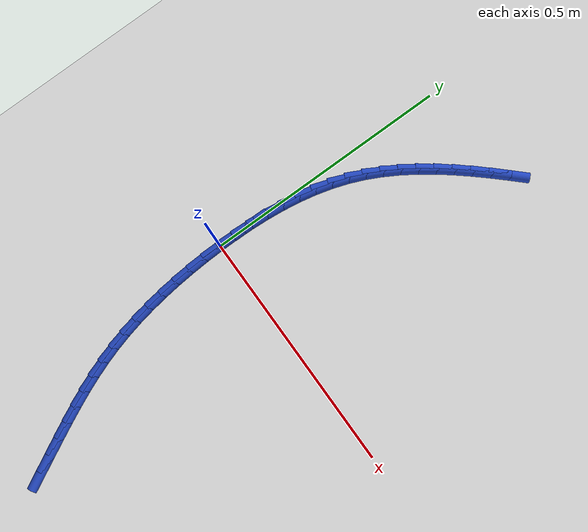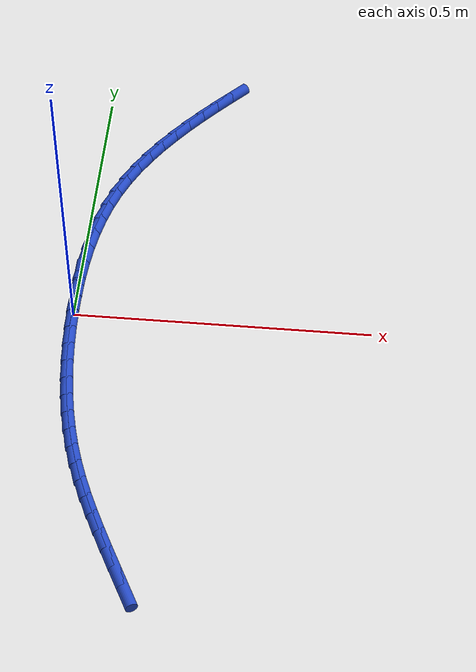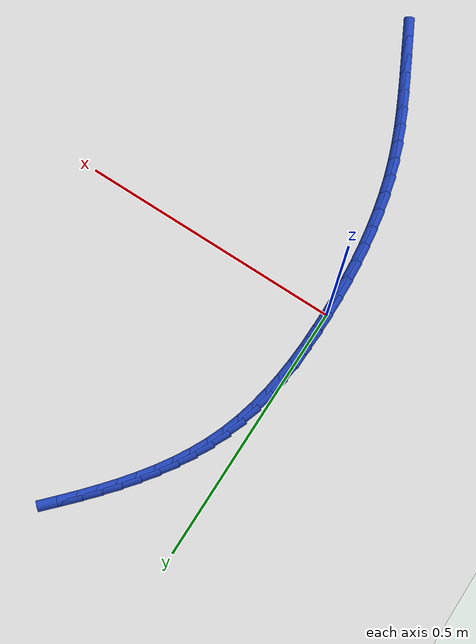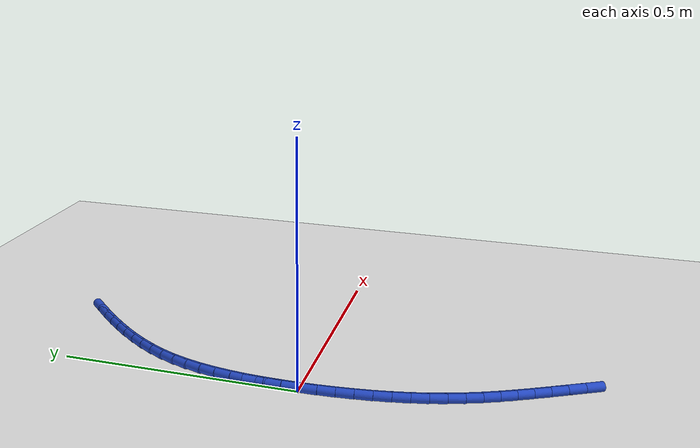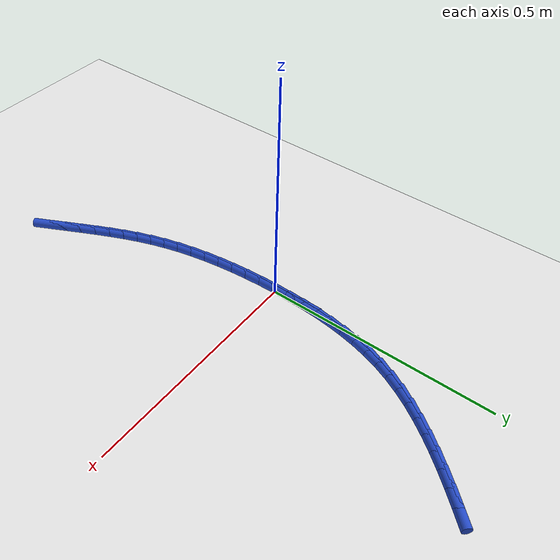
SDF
<sdf version="1.6">
 <world name="default">
  <model name="ground_plane">
   <static>1</static>
   <link name="link">
    <collision name="collision">
     <geometry><plane><normal>0 0 1</normal><size>100 100</size></plane></geometry>
     <surface><friction><ode><mu>100</mu><mu2>50</mu2></ode></friction></surface>
    </collision>
    <visual name="visual">
     <cast_shadows>0</cast_shadows>
     <geometry><plane><normal>0 0 1</normal><size>100 100</size></plane></geometry>
     <material>
      <script><uri>file://media/materials/scripts/gazebo.material</uri><name>Gazebo/WhiteGlow</name></script>
     </material>
    </visual>
   </link>
  </model>
  <model name="line">
   <link name="link_0">
    <pose>2.168404344971009e-18 -2.0816681711721685e-17 0.01 0 1.57 -1.5666137799620388</pose>
    <collision name="collision">
     <geometry><cylinder><radius>0.01</radius><length>0.08</length></cylinder></geometry>
    </collision>
    <visual name="visual">
     <material>
      <script><name>Gazebo/Blue</name><uri>file://media/materials/scripts/gazebo.material</uri></script>
     </material>
     <geometry><cylinder><radius>0.01</radius><length>0.08</length></cylinder></geometry>
    </visual>
   </link>
   <link name="link_1">
    <pose>-0.00014931991068801466 0.03570050639835543 0.01 0 1.57 1.5447862486688388</pose>
    <collision name="collision">
     <geometry><cylinder><radius>0.01</radius><length>0.08</length></cylinder></geometry>
    </collision>
    <visual name="visual">
     <material>
      <script><name>Gazebo/Blue</name><uri>file://media/materials/scripts/gazebo.material</uri></script>
     </material>
     <geometry><cylinder><radius>0.01</radius><length>0.08</length></cylinder></geometry>
    </visual>
   </link>
   <link name="link_2">
    <pose>0.0007764572397612806 0.07128549642963346 0.01 0 1.57 1.509629643829701</pose>
    <collision name="collision">
     <geometry><cylinder><radius>0.01</radius><length>0.08</length></cylinder></geometry>
    </collision>
    <visual name="visual">
     <material>
      <script><name>Gazebo/Blue</name><uri>file://media/materials/scripts/gazebo.material</uri></script>
     </material>
     <geometry><cylinder><radius>0.01</radius><length>0.08</length></cylinder></geometry>
    </visual>
   </link>
   <link name="link_3">
    <pose>0.002941073291581074 0.10663016014580813 0.01 0 1.57 1.4691681011994149</pose>
    <collision name="collision">
     <geometry><cylinder><radius>0.01</radius><length>0.08</length></cylinder></geometry>
    </collision>
    <visual name="visual">
     <material>
      <script><name>Gazebo/Blue</name><uri>file://media/materials/scripts/gazebo.material</uri></script>
     </material>
     <geometry><cylinder><radius>0.01</radius><length>0.08</length></cylinder></geometry>
    </visual>
   </link>
   <link name="link_4">
    <pose>0.006508270085004558 0.1416096875988536 0.01 0 1.57 1.4230384902590512</pose>
    <collision name="collision">
     <geometry><cylinder><radius>0.01</radius><length>0.08</length></cylinder></geometry>
    </collision>
    <visual name="visual">
     <material>
      <script><name>Gazebo/Blue</name><uri>file://media/materials/scripts/gazebo.material</uri></script>
     </material>
     <geometry><cylinder><radius>0.01</radius><length>0.08</length></cylinder></geometry>
    </visual>
   </link>
   <link name="link_5">
    <pose>0.011641789460264932 0.17609926884074395 0.01 0 1.57 1.3708865889503392</pose>
    <collision name="collision">
     <geometry><cylinder><radius>0.01</radius><length>0.08</length></cylinder></geometry>
    </collision>
    <visual name="visual">
     <material>
      <script><name>Gazebo/Blue</name><uri>file://media/materials/scripts/gazebo.material</uri></script>
     </material>
     <geometry><cylinder><radius>0.01</radius><length>0.08</length></cylinder></geometry>
    </visual>
   </link>
   <link name="link_6">
    <pose>0.01850537325759537 0.20997409392345323 0.01 0 1.57 1.312412080597748</pose>
    <collision name="collision">
     <geometry><cylinder><radius>0.01</radius><length>0.08</length></cylinder></geometry>
    </collision>
    <visual name="visual">
     <material>
      <script><name>Gazebo/Blue</name><uri>file://media/materials/scripts/gazebo.material</uri></script>
     </material>
     <geometry><cylinder><radius>0.01</radius><length>0.08</length></cylinder></geometry>
    </visual>
   </link>
   <link name="link_7">
    <pose>0.02726276331722908 0.24310935289895558 0.01 0 1.57 1.2474297237642613</pose>
    <collision name="collision">
     <geometry><cylinder><radius>0.01</radius><length>0.08</length></cylinder></geometry>
    </collision>
    <visual name="visual">
     <material>
      <script><name>Gazebo/Blue</name><uri>file://media/materials/scripts/gazebo.material</uri></script>
     </material>
     <geometry><cylinder><radius>0.01</radius><length>0.08</length></cylinder></geometry>
    </visual>
   </link>
   <link name="link_8">
    <pose>0.03807770147939925 0.2753802358192252 0.01 0 1.57 1.1770028223140747</pose>
    <collision name="collision">
     <geometry><cylinder><radius>0.01</radius><length>0.08</length></cylinder></geometry>
    </collision>
    <visual name="visual">
     <material>
      <script><name>Gazebo/Blue</name><uri>file://media/materials/scripts/gazebo.material</uri></script>
     </material>
     <geometry><cylinder><radius>0.01</radius><length>0.08</length></cylinder></geometry>
    </visual>
   </link>
   <link name="link_9">
    <pose>0.0510826033534428 0.30667991431961295 0.01 0 1.57 1.109309502528066</pose>
    <collision name="collision">
     <geometry><cylinder><radius>0.01</radius><length>0.08</length></cylinder></geometry>
    </collision>
    <visual name="visual">
     <material>
      <script><name>Gazebo/Blue</name><uri>file://media/materials/scripts/gazebo.material</uri></script>
     </material>
     <geometry><cylinder><radius>0.01</radius><length>0.08</length></cylinder></geometry>
    </visual>
   </link>
   <link name="link_10">
    <pose>0.06617806148963003 0.33703462889010094 0.01 0 1.57 1.0483875146573116</pose>
    <collision name="collision">
     <geometry><cylinder><radius>0.01</radius><length>0.08</length></cylinder></geometry>
    </collision>
    <visual name="visual">
     <material>
      <script><name>Gazebo/Blue</name><uri>file://media/materials/scripts/gazebo.material</uri></script>
     </material>
     <geometry><cylinder><radius>0.01</radius><length>0.08</length></cylinder></geometry>
    </visual>
   </link>
   <link name="link_11">
    <pose>0.08316064611714269 0.3665303299182934 0.01 0 1.57 0.9945217166711843</pose>
    <collision name="collision">
     <geometry><cylinder><radius>0.01</radius><length>0.08</length></cylinder></geometry>
    </collision>
    <visual name="visual">
     <material>
      <script><name>Gazebo/Blue</name><uri>file://media/materials/scripts/gazebo.material</uri></script>
     </material>
     <geometry><cylinder><radius>0.01</radius><length>0.08</length></cylinder></geometry>
    </visual>
   </link>
   <link name="link_12">
    <pose>0.10182643424813126 0.39525325090351665 0.01 0 1.57 0.9477398968117192</pose>
    <collision name="collision">
     <geometry><cylinder><radius>0.01</radius><length>0.08</length></cylinder></geometry>
    </collision>
    <visual name="visual">
     <material>
      <script><name>Gazebo/Blue</name><uri>file://media/materials/scripts/gazebo.material</uri></script>
     </material>
     <geometry><cylinder><radius>0.01</radius><length>0.08</length></cylinder></geometry>
    </visual>
   </link>
   <link name="link_13">
    <pose>0.12197150289474602 0.42328962534509695 0.01 0 1.57 0.9079102131461442</pose>
    <collision name="collision">
     <geometry><cylinder><radius>0.01</radius><length>0.08</length></cylinder></geometry>
    </collision>
    <visual name="visual">
     <material>
      <script><name>Gazebo/Blue</name><uri>file://media/materials/scripts/gazebo.material</uri></script>
     </material>
     <geometry><cylinder><radius>0.01</radius><length>0.08</length></cylinder></geometry>
    </visual>
   </link>
   <link name="link_14">
    <pose>0.14339192906913736 0.4507256867423606 0.01 0 1.57 0.8748125549227674</pose>
    <collision name="collision">
     <geometry><cylinder><radius>0.01</radius><length>0.08</length></cylinder></geometry>
    </collision>
    <visual name="visual">
     <material>
      <script><name>Gazebo/Blue</name><uri>file://media/materials/scripts/gazebo.material</uri></script>
     </material>
     <geometry><cylinder><radius>0.01</radius><length>0.08</length></cylinder></geometry>
    </visual>
   </link>
   <link name="link_15">
    <pose>0.16588378978345567 0.4776476685946338 0.01 0 1.57 0.8481949853797409</pose>
    <collision name="collision">
     <geometry><cylinder><radius>0.01</radius><length>0.08</length></cylinder></geometry>
    </collision>
    <visual name="visual">
     <material>
      <script><name>Gazebo/Blue</name><uri>file://media/materials/scripts/gazebo.material</uri></script>
     </material>
     <geometry><cylinder><radius>0.01</radius><length>0.08</length></cylinder></geometry>
    </visual>
   </link>
   <link name="link_16">
    <pose>0.18924316204985142 0.504141804401243 0.01 0 1.57 0.8278149961226481</pose>
    <collision name="collision">
     <geometry><cylinder><radius>0.01</radius><length>0.08</length></cylinder></geometry>
    </collision>
    <visual name="visual">
     <material>
      <script><name>Gazebo/Blue</name><uri>file://media/materials/scripts/gazebo.material</uri></script>
     </material>
     <geometry><cylinder><radius>0.01</radius><length>0.08</length></cylinder></geometry>
    </visual>
   </link>
   <link name="link_17">
    <pose>0.21326612288047486 0.5302943276615144 0.01 0 1.57 0.8134678879189604</pose>
    <collision name="collision">
     <geometry><cylinder><radius>0.01</radius><length>0.08</length></cylinder></geometry>
    </collision>
    <visual name="visual">
     <material>
      <script><name>Gazebo/Blue</name><uri>file://media/materials/scripts/gazebo.material</uri></script>
     </material>
     <geometry><cylinder><radius>0.01</radius><length>0.08</length></cylinder></geometry>
    </visual>
   </link>
   <link name="link_204">
    <pose>0.1515204536075395 -0.5266078926274651 0.01 0 1.57 -1.093532375312343</pose>
    <collision name="collision">
     <geometry><cylinder><radius>0.01</radius><length>0.08</length></cylinder></geometry>
    </collision>
    <visual name="visual">
     <material>
      <script><name>Gazebo/Blue</name><uri>file://media/materials/scripts/gazebo.material</uri></script>
     </material>
     <geometry><cylinder><radius>0.01</radius><length>0.08</length></cylinder></geometry>
    </visual>
   </link>
   <link name="link_205">
    <pose>0.13402035053044556 -0.4927676073832196 0.01 0 1.57 -1.0958330422630933</pose>
    <collision name="collision">
     <geometry><cylinder><radius>0.01</radius><length>0.08</length></cylinder></geometry>
    </collision>
    <visual name="visual">
     <material>
      <script><name>Gazebo/Blue</name><uri>file://media/materials/scripts/gazebo.material</uri></script>
     </material>
     <geometry><cylinder><radius>0.01</radius><length>0.08</length></cylinder></geometry>
    </visual>
   </link>
   <link name="link_206">
    <pose>0.1173349793104182 -0.4603200428177496 0.01 0 1.57 -1.1047734398074265</pose>
    <collision name="collision">
     <geometry><cylinder><radius>0.01</radius><length>0.08</length></cylinder></geometry>
    </collision>
    <visual name="visual">
     <material>
      <script><name>Gazebo/Blue</name><uri>file://media/materials/scripts/gazebo.material</uri></script>
     </material>
     <geometry><cylinder><radius>0.01</radius><length>0.08</length></cylinder></geometry>
    </visual>
   </link>
   <link name="link_207">
    <pose>0.10153995030870049 -0.4289166861537033 0.01 0 1.57 -1.120912908005571</pose>
    <collision name="collision">
     <geometry><cylinder><radius>0.01</radius><length>0.08</length></cylinder></geometry>
    </collision>
    <visual name="visual">
     <material>
      <script><name>Gazebo/Blue</name><uri>file://media/materials/scripts/gazebo.material</uri></script>
     </material>
     <geometry><cylinder><radius>0.01</radius><length>0.08</length></cylinder></geometry>
    </visual>
   </link>
   <link name="link_208">
    <pose>0.08671087388653664 -0.3982090246137315 0.01 0 1.57 -1.1445156856934706</pose>
    <collision name="collision">
     <geometry><cylinder><radius>0.01</radius><length>0.08</length></cylinder></geometry>
    </collision>
    <visual name="visual">
     <material>
      <script><name>Gazebo/Blue</name><uri>file://media/materials/scripts/gazebo.material</uri></script>
     </material>
     <geometry><cylinder><radius>0.01</radius><length>0.08</length></cylinder></geometry>
    </visual>
   </link>
   <link name="link_209">
    <pose>0.07292336040516968 -0.3678485454204824 0.01 0 1.57 -1.1754556685708797</pose>
    <collision name="collision">
     <geometry><cylinder><radius>0.01</radius><length>0.08</length></cylinder></geometry>
    </collision>
    <visual name="visual">
     <material>
      <script><name>Gazebo/Blue</name><uri>file://media/materials/scripts/gazebo.material</uri></script>
     </material>
     <geometry><cylinder><radius>0.01</radius><length>0.08</length></cylinder></geometry>
    </visual>
   </link>
   <link name="link_210">
    <pose>0.060253020225843126 -0.33748673579660515 0.01 0 1.57 -1.2131483882811267</pose>
    <collision name="collision">
     <geometry><cylinder><radius>0.01</radius><length>0.08</length></cylinder></geometry>
    </collision>
    <visual name="visual">
     <material>
      <script><name>Gazebo/Blue</name><uri>file://media/materials/scripts/gazebo.material</uri></script>
     </material>
     <geometry><cylinder><radius>0.01</radius><length>0.08</length></cylinder></geometry>
    </visual>
   </link>
   <link name="link_211">
    <pose>0.048775463709800404 -0.306775082964749 0.01 0 1.57 -1.2565274900549235</pose>
    <collision name="collision">
     <geometry><cylinder><radius>0.01</radius><length>0.08</length></cylinder></geometry>
    </collision>
    <visual name="visual">
     <material>
      <script><name>Gazebo/Blue</name><uri>file://media/materials/scripts/gazebo.material</uri></script>
     </material>
     <geometry><cylinder><radius>0.01</radius><length>0.08</length></cylinder></geometry>
    </visual>
   </link>
   <link name="link_212">
    <pose>0.038566131490826966 -0.2753656999812375 0.01 0 1.57 -1.3020666928517608</pose>
    <collision name="collision">
     <geometry><cylinder><radius>0.01</radius><length>0.08</length></cylinder></geometry>
    </collision>
    <visual name="visual">
     <material>
      <script><name>Gazebo/Blue</name><uri>file://media/materials/scripts/gazebo.material</uri></script>
     </material>
     <geometry><cylinder><radius>0.01</radius><length>0.08</length></cylinder></geometry>
    </visual>
   </link>
   <link name="link_213">
    <pose>0.029664667701409464 -0.24304269183980715 0.01 0 1.57 -1.3445188179474628</pose>
    <collision name="collision">
     <geometry><cylinder><radius>0.01</radius><length>0.08</length></cylinder></geometry>
    </collision>
    <visual name="visual">
     <material>
      <script><name>Gazebo/Blue</name><uri>file://media/materials/scripts/gazebo.material</uri></script>
     </material>
     <geometry><cylinder><radius>0.01</radius><length>0.08</length></cylinder></geometry>
    </visual>
   </link>
   <link name="link_214">
    <pose>0.022030940764855973 -0.20988431938826657 0.01 0 1.57 -1.3835896260984524</pose>
    <collision name="collision">
     <geometry><cylinder><radius>0.01</radius><length>0.08</length></cylinder></geometry>
    </collision>
    <visual name="visual">
     <material>
      <script><name>Gazebo/Blue</name><uri>file://media/materials/scripts/gazebo.material</uri></script>
     </material>
     <geometry><cylinder><radius>0.01</radius><length>0.08</length></cylinder></geometry>
    </visual>
   </link>
   <link name="link_215">
    <pose>0.015614039019457937 -0.17600859273078168 0.01 0 1.57 -1.4196454228982036</pose>
    <collision name="collision">
     <geometry><cylinder><radius>0.01</radius><length>0.08</length></cylinder></geometry>
    </collision>
    <visual name="visual">
     <material>
      <script><name>Gazebo/Blue</name><uri>file://media/materials/scripts/gazebo.material</uri></script>
     </material>
     <geometry><cylinder><radius>0.01</radius><length>0.08</length></cylinder></geometry>
    </visual>
   </link>
   <link name="link_216">
    <pose>0.010363050803506677 -0.14153352197151758 0.01 0 1.57 -1.4530254446043702</pose>
    <collision name="collision">
     <geometry><cylinder><radius>0.01</radius><length>0.08</length></cylinder></geometry>
    </collision>
    <visual name="visual">
     <material>
      <script><name>Gazebo/Blue</name><uri>file://media/materials/scripts/gazebo.material</uri></script>
     </material>
     <geometry><cylinder><radius>0.01</radius><length>0.08</length></cylinder></geometry>
    </visual>
   </link>
   <link name="link_217">
    <pose>0.0062270644552939 -0.10657711721464203 0.01 0 1.57 -1.4840406954959315</pose>
    <collision name="collision">
     <geometry><cylinder><radius>0.01</radius><length>0.08</length></cylinder></geometry>
    </collision>
    <visual name="visual">
     <material>
      <script><name>Gazebo/Blue</name><uri>file://media/materials/scripts/gazebo.material</uri></script>
     </material>
     <geometry><cylinder><radius>0.01</radius><length>0.08</length></cylinder></geometry>
    </visual>
   </link>
   <link name="link_218">
    <pose>0.0031551683131109043 -0.07125738856432008 0.01 0 1.57 -1.5129748642863805</pose>
    <collision name="collision">
     <geometry><cylinder><radius>0.01</radius><length>0.08</length></cylinder></geometry>
    </collision>
    <visual name="visual">
     <material>
      <script><name>Gazebo/Blue</name><uri>file://media/materials/scripts/gazebo.material</uri></script>
     </material>
     <geometry><cylinder><radius>0.01</radius><length>0.08</length></cylinder></geometry>
    </visual>
   </link>
   <link name="link_219">
    <pose>0.0010964507152491296 -0.035692346124717736 0.01 0 1.57 -1.5400864932516671</pose>
    <collision name="collision">
     <geometry><cylinder><radius>0.01</radius><length>0.08</length></cylinder></geometry>
    </collision>
    <visual name="visual">
     <material>
      <script><name>Gazebo/Blue</name><uri>file://media/materials/scripts/gazebo.material</uri></script>
     </material>
     <geometry><cylinder><radius>0.01</radius><length>0.08</length></cylinder></geometry>
    </visual>
   </link>
   <link name="link_220">
    <pose>6.5052130349130266e-18 -8.326672684688674e-17 0.01 0 1.57 -1.5656118636303156</pose>
    <collision name="collision">
     <geometry><cylinder><radius>0.01</radius><length>0.08</length></cylinder></geometry>
    </collision>
    <visual name="visual">
     <material>
      <script><name>Gazebo/Blue</name><uri>file://media/materials/scripts/gazebo.material</uri></script>
     </material>
     <geometry><cylinder><radius>0.01</radius><length>0.08</length></cylinder></geometry>
    </visual>
   </link>
   <link name="link_221">
    <pose>-0.00018509549434497525 0.0357016397056643 0.01 0 1.57 1.5518243802547205</pose>
    <collision name="collision">
     <geometry><cylinder><radius>0.01</radius><length>0.08</length></cylinder></geometry>
    </collision>
    <visual name="visual">
     <material>
      <script><name>Gazebo/Blue</name><uri>file://media/materials/scripts/gazebo.material</uri></script>
     </material>
     <geometry><cylinder><radius>0.01</radius><length>0.08</length></cylinder></geometry>
    </visual>
   </link>
   <link name="link_222">
    <pose>0.0004902525705056029 0.07129456288811287 0.01 0 1.57 1.5639199981717233</pose>
    <collision name="collision">
     <geometry><cylinder><radius>0.01</radius><length>0.08</length></cylinder></geometry>
    </collision>
    <visual name="visual">
     <material>
      <script><name>Gazebo/Blue</name><uri>file://media/materials/scripts/gazebo.material</uri></script>
     </material>
     <geometry><cylinder><radius>0.01</radius><length>0.08</length></cylinder></geometry>
    </visual>
   </link>
  </model>
 </world>
</sdf>
